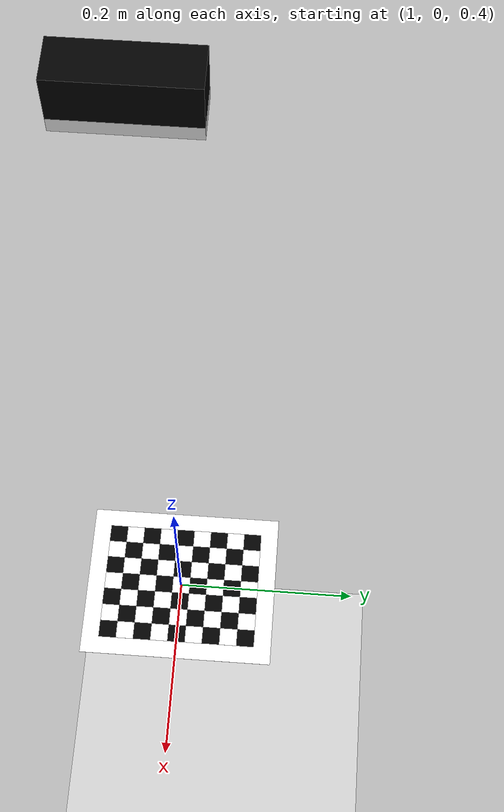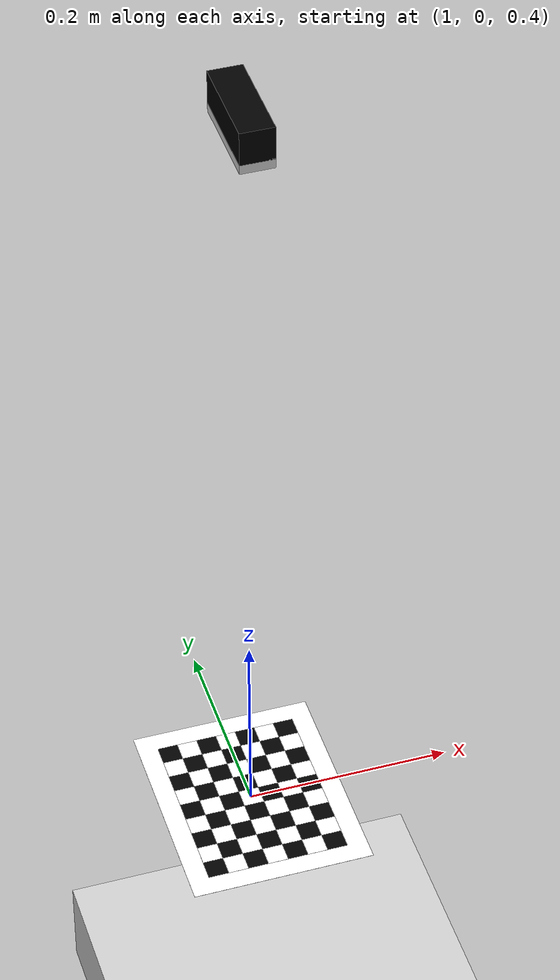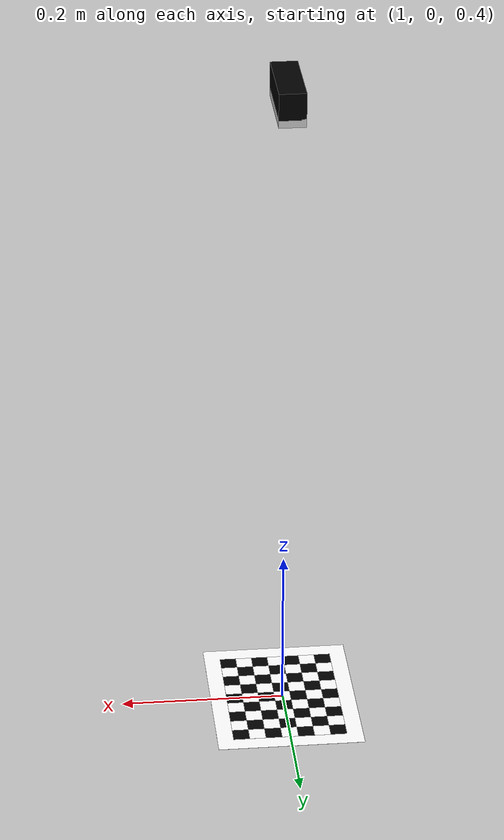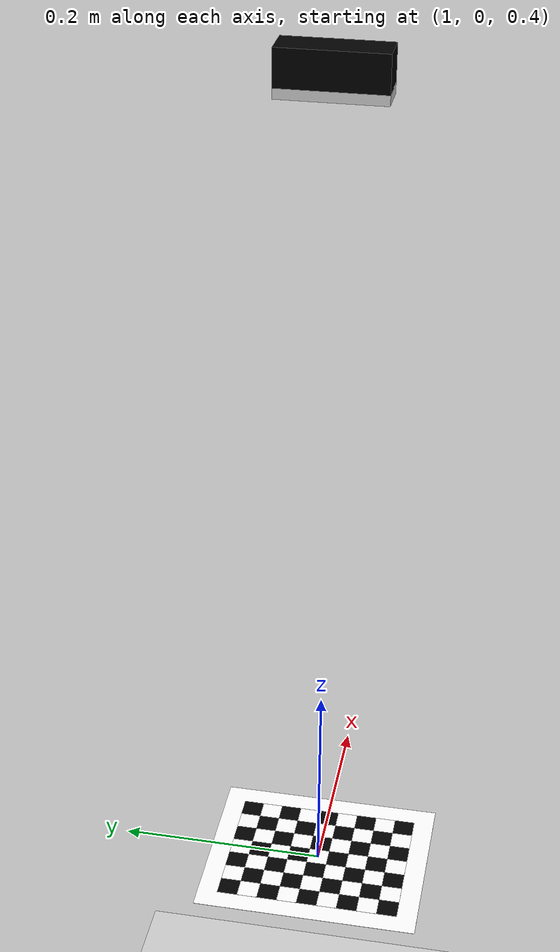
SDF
<?xml version="1.0" ?>
<sdf version="1.6">
  <world name="visual_servoing">
    <physics name="1ms" type="ignored">
      <max_step_size>0.001</max_step_size>
      <real_time_factor>1.0</real_time_factor>
    </physics>
    <plugin
      filename="ignition-gazebo-physics-system"
      name="gz::sim::systems::Physics">
    </plugin>
    <plugin
      filename="ignition-gazebo-sensors-system"
      name="gz::sim::systems::Sensors">
      <render_engine>ogre2</render_engine>
    </plugin>
    <plugin
      filename="ignition-gazebo-user-commands-system"
      name="ignition::gazebo::systems::UserCommands">
    </plugin>
    <plugin
      filename="ignition-gazebo-scene-broadcaster-system"
      name="gz::sim::systems::SceneBroadcaster">
    </plugin>

    <gui fullscreen="0">

      <!-- 3D scene -->
      <plugin filename="MinimalScene" name="3D View">
        <ignition-gui>
          <title>3D View</title>
          <property type="bool" key="showTitleBar">false</property>
          <property type="string" key="state">docked</property>
        </ignition-gui>

        <engine>ogre2</engine>
        <scene>scene</scene>
        <ambient_light>0.4 0.4 0.4</ambient_light>
        <background_color>0.8 0.8 0.8</background_color>
        <camera_pose>-6 0 6 0 0.5 0</camera_pose>
      </plugin>

      <!-- Plugins that add functionality to the scene -->
      <plugin filename="EntityContextMenuPlugin" name="Entity context menu">
        <ignition-gui>
          <property key="state" type="string">floating</property>
          <property key="width" type="double">5</property>
          <property key="height" type="double">5</property>
          <property key="showTitleBar" type="bool">false</property>
        </ignition-gui>
      </plugin>
      <plugin filename="GzSceneManager" name="Scene Manager">
        <ignition-gui>
          <property key="resizable" type="bool">false</property>
          <property key="width" type="double">5</property>
          <property key="height" type="double">5</property>
          <property key="state" type="string">floating</property>
          <property key="showTitleBar" type="bool">false</property>
        </ignition-gui>
      </plugin>
      <plugin filename="InteractiveViewControl" name="Interactive view control">
        <ignition-gui>
          <property key="resizable" type="bool">false</property>
          <property key="width" type="double">5</property>
          <property key="height" type="double">5</property>
          <property key="state" type="string">floating</property>
          <property key="showTitleBar" type="bool">false</property>
        </ignition-gui>
      </plugin>
      <plugin filename="CameraTracking" name="Camera Tracking">
        <ignition-gui>
          <property key="resizable" type="bool">false</property>
          <property key="width" type="double">5</property>
          <property key="height" type="double">5</property>
          <property key="state" type="string">floating</property>
          <property key="showTitleBar" type="bool">false</property>
        </ignition-gui>
      </plugin>
      <!-- World control -->
      <plugin filename="WorldControl" name="World control">
        <ignition-gui>
          <title>World control</title>
          <property type="bool" key="showTitleBar">false</property>
          <property type="bool" key="resizable">false</property>
          <property type="double" key="height">72</property>
          <property type="double" key="width">121</property>
          <property type="double" key="z">1</property>

          <property type="string" key="state">floating</property>
          <anchors target="3D View">
            <line own="left" target="left"/>
            <line own="bottom" target="bottom"/>
          </anchors>
        </ignition-gui>

        <play_pause>true</play_pause>
        <step>true</step>
        <start_paused>true</start_paused>
        <use_event>true</use_event>

      </plugin>

      <!-- World statistics -->
      <plugin filename="WorldStats" name="World stats">
        <ignition-gui>
          <title>World stats</title>
          <property type="bool" key="showTitleBar">false</property>
          <property type="bool" key="resizable">false</property>
          <property type="double" key="height">110</property>
          <property type="double" key="width">290</property>
          <property type="double" key="z">1</property>

          <property type="string" key="state">floating</property>
          <anchors target="3D View">
            <line own="right" target="right"/>
            <line own="bottom" target="bottom"/>
          </anchors>
        </ignition-gui>

        <sim_time>true</sim_time>
        <real_time>true</real_time>
        <real_time_factor>true</real_time_factor>
        <iterations>true</iterations>
      </plugin>

      <!-- Inspector -->
      <plugin filename="ComponentInspector" name="Component inspector">
        <ignition-gui>
          <property type="string" key="state">docked</property>
        </ignition-gui>
      </plugin>

      <!-- Entity tree -->
      <plugin filename="EntityTree" name="Entity tree">
        <ignition-gui>
          <property type="string" key="state">docked</property>
        </ignition-gui>
      </plugin>

      <plugin filename="ImageDisplay" name="Image Display 3">
        <ignition-gui>
          <title>RGBD: image</title>
          <property key="state" type="string">floating</property>
          <property type="double" key="width">350</property>
          <property type="double" key="height">315</property>
          <property type="double" key="y">320</property>

        </ignition-gui>
        <topic>rgbd_camera/image</topic>
        <topic_picker>false</topic_picker>
      </plugin>

      <plugin filename="ImageDisplay" name="Image Display 3">
        <ignition-gui>
          <title>RGBD: depth</title>
          <property key="state" type="string">docked</property>
        </ignition-gui>
        <topic>rgbd_camera/depth_image</topic>
        <topic_picker>false</topic_picker>
      </plugin>

      <plugin filename="MarkerManager" name="Marker manager">
        <ignition-gui>
          <property key="resizable" type="bool">false</property>
          <property key="width" type="double">5</property>
          <property key="height" type="double">5</property>
          <property key="state" type="string">floating</property>
          <property key="showTitleBar" type="bool">false</property>
        </ignition-gui>
      </plugin>

      <plugin filename="SelectEntities" name="Select Entities">
        <ignition-gui>
          <anchors target="Select entities">
            <line own="right" target="right"/>
            <line own="top" target="top"/>
          </anchors>
          <property key="resizable" type="bool">false</property>
          <property key="width" type="double">5</property>
          <property key="height" type="double">5</property>
          <property key="state" type="string">floating</property>
          <property key="showTitleBar" type="bool">false</property>
        </ignition-gui>
      </plugin>

      <plugin filename="VisualizationCapabilities" name="Visualization Capabilities">
        <ignition-gui>
          <property key="resizable" type="bool">false</property>
          <property key="width" type="double">5</property>
          <property key="height" type="double">5</property>
          <property key="state" type="string">floating</property>
          <property key="showTitleBar" type="bool">false</property>
        </ignition-gui>
      </plugin>

      <plugin filename="Spawn" name="Spawn Entities">
        <ignition-gui>
          <anchors target="Select entities">
            <line own="right" target="right"/>
            <line own="top" target="top"/>
          </anchors>
          <property key="resizable" type="bool">false</property>
          <property key="width" type="double">5</property>
          <property key="height" type="double">5</property>
          <property key="state" type="string">floating</property>
          <property key="showTitleBar" type="bool">false</property>
        </ignition-gui>
      </plugin>

      <!-- Insert simple shapes -->
      <plugin filename="Shapes" name="Shapes">
        <ignition-gui>
          <property key="resizable" type="bool">false</property>
          <property key="x" type="double">0</property>
          <property key="y" type="double">0</property>
          <property key="width" type="double">250</property>
          <property key="height" type="double">50</property>
          <property key="state" type="string">floating</property>
          <property key="showTitleBar" type="bool">false</property>
          <property key="cardBackground" type="string">#666666</property>
        </ignition-gui>
      </plugin>

      <!-- Insert lights -->
      <plugin filename="Lights" name="Lights">
        <ignition-gui>
          <property key="resizable" type="bool">false</property>
          <property key="x" type="double">250</property>
          <property key="y" type="double">0</property>
          <property key="width" type="double">150</property>
          <property key="height" type="double">50</property>
          <property key="state" type="string">floating</property>
          <property key="showTitleBar" type="bool">false</property>
          <property key="cardBackground" type="string">#666666</property>
        </ignition-gui>
      </plugin>

      <!-- Translate / rotate -->
      <plugin filename="TransformControl" name="Transform control">
        <ignition-gui>
          <property key="resizable" type="bool">false</property>
          <property key="x" type="double">0</property>
          <property key="y" type="double">50</property>
          <property key="width" type="double">250</property>
          <property key="height" type="double">50</property>
          <property key="state" type="string">floating</property>
          <property key="showTitleBar" type="bool">false</property>
          <property key="cardBackground" type="string">#777777</property>
        </ignition-gui>

        <!-- disable legacy features used to connect this plugin to GzScene3D -->
        <legacy>false</legacy>
      </plugin>

      <!-- Screenshot -->
      <plugin filename="Screenshot" name="Screenshot">
        <ignition-gui>
          <property key="resizable" type="bool">false</property>
          <property key="x" type="double">250</property>
          <property key="y" type="double">50</property>
          <property key="width" type="double">50</property>
          <property key="height" type="double">50</property>
          <property key="state" type="string">floating</property>
          <property key="showTitleBar" type="bool">false</property>
          <property key="cardBackground" type="string">#777777</property>
        </ignition-gui>
      </plugin>

      <!-- Video recorder -->
      <plugin filename="VideoRecorder" name="VideoRecorder">
        <ignition-gui>
          <property key="resizable" type="bool">false</property>
          <property key="x" type="double">300</property>
          <property key="y" type="double">50</property>
          <property key="width" type="double">50</property>
          <property key="height" type="double">50</property>
          <property key="state" type="string">floating</property>
          <property key="showTitleBar" type="bool">false</property>
          <property key="cardBackground" type="string">#777777</property>
        </ignition-gui>

        <record_video>
          <use_sim_time>true</use_sim_time>
          <lockstep>true</lockstep>
          <bitrate>4000000</bitrate>
        </record_video>

        <!-- disable legacy features used to connect this plugin to GzScene3D -->
        <legacy>false</legacy>
      </plugin>

      <!-- View angle -->
      <plugin filename="ViewAngle" name="View angle">
        <ignition-gui>
          <property type="string" key="state">docked_collapsed</property>
        </ignition-gui>

        <!-- disable legacy features used to connect this plugin to GzScene3D -->
        <legacy>false</legacy>
      </plugin>

    </gui>

    <light type="directional" name="sun">
      <cast_shadows>true</cast_shadows>
      <pose>0 0 10 0 0 0</pose>
      <diffuse>0.8 0.8 0.8 1</diffuse>
      <specular>0.2 0.2 0.2 1</specular>
      <attenuation>
        <range>1000</range>
        <constant>0.9</constant>
        <linear>0.01</linear>
        <quadratic>0.001</quadratic>
      </attenuation>
      <direction>-0.5 0.1 -0.9</direction>
    </light>

    <model name="ground_plane">
      <static>true</static>
      <link name="link">
        <collision name="collision">
          <geometry>
            <box>
              <size>20 20 0.1</size>
            </box>
          </geometry>
        </collision>
        <visual name="visual">
          <geometry>
            <box>
              <size>20 20 0.1</size>
            </box>
          </geometry>
          <material>
            <ambient>0.8 0.8 0.8 1</ambient>
            <diffuse>0.8 0.8 0.8 1</diffuse>
            <specular>0.8 0.8 0.8 1</specular>
          </material>

        </visual>
      </link>
    </model>

    <model name="rgbd_camera">
      <joint name="joint_world" type="fixed">
        <parent>world</parent>
        <child>rgbd_camera_lens</child>
      </joint>

      <link name="rgbd_camera_lens">

        <pose>1.0 0 1.2 0 1.5708 0</pose>

        <inertial>
          <mass>0.05</mass>
          <inertia>
          </inertia>
        </inertial>

        <collision name="collision">
          <geometry>
            <box>
              <size>0.01 0.0936 0.0318</size>
            </box>
          </geometry>
        </collision>

        <visual name="visual">
          <geometry>
            <box>
              <size>0.01 0.0936 0.0318</size>
            </box>
          </geometry>

          <material>
            <ambient>0.85 0.85 0.85 1</ambient>
            <diffuse>0.85 0.85 0.85 1</diffuse>
            <specular>0.95 0.95 0.95 1</specular>
          </material>
        </visual>

        <sensor name="rgbd_camera" type="rgbd_camera">
          <camera>

            <horizontal_fov>1.9199</horizontal_fov>
            <image>
              <width>960</width>
              <height>600</height>
              <format>R8G8B8</format>
            </image>
            <clip>
              <near>0.01</near>
              <far>15</far>
            </clip>

            <depth_camera>
              <clip>
                <near>0.1</near>
                <far>8</far>
              </clip>
            </depth_camera>

          </camera>
          <always_on>1</always_on>
          <update_rate>60</update_rate>
          <visualize>true</visualize>
          <topic>rgbd_camera</topic>
          <enable_metrics>true</enable_metrics>
        </sensor>
      </link>

      <joint name="joint_camera" type="fixed">
        <parent>world</parent>
        <child>rgbd_camera_body</child>
      </joint>

      <link name="rgbd_camera_body">
        <pose>1.0 0 1.22 0 1.5708 0</pose>
        <inertial>
          <mass>0.101</mass>
        </inertial>
        <collision name="collision">
          <geometry>
            <box>
              <size>0.0324 0.0936 0.0318</size>
            </box>
          </geometry>
        </collision>

        <visual name="visual">
          <geometry>
            <box>
              <size>0.0324 0.0936 0.0318</size>
            </box>
          </geometry>
          <material>
            <ambient>0.0 0.0 0.0 1</ambient>
            <diffuse>0.0 0.0 0.0 1</diffuse>
            <specular>0.1 0.1 0.1 1</specular>
          </material>

        </visual>
      </link>
    </model>

    <!--checker board-->
    <joint name="joint_checker_board" type="screw">
        <parent>world</parent>
        <child>checker_board</child>
    </joint>

    <include>
        <pose>1.0 0.0 0.4 0 0 0</pose>
        <name>checker_board</name>
        <uri>model://description/checker_board.sdf</uri>
    </include>

  </world>
</sdf>

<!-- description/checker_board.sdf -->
<sdf version="1.4">
  <model name="checkerboard">
  <static>true</static>
  <link name="checkerboard_body">
      <visual name="checker_0_0">
        <pose>-0.060000000000000005 -0.08 0 0 0 0</pose>
        <geometry>
          <box>
            <size>0.02 0.02 0.0002</size>
          </box>
        </geometry>
        <material>
          <ambient>0 0 0 1</ambient>
          <diffuse>0 0 0 1</diffuse>
          <specular>0 0 0 1</specular>
          <emissive>0 0 0 1</emissive>
        </material>
      </visual>
      <visual name="checker_0_1">
        <pose>-0.060000000000000005 -0.06 0 0 0 0</pose>
        <geometry>
          <box>
            <size>0.02 0.02 0.0002</size>
          </box>
        </geometry>
        <material>
          <ambient>1 1 1 1</ambient>
          <diffuse>1 1 1 1</diffuse>
          <specular>1 1 1 1</specular>
          <emissive>1 1 1 1</emissive>
        </material>
      </visual>
      <visual name="checker_0_2">
        <pose>-0.060000000000000005 -0.039999999999999994 0 0 0 0</pose>
        <geometry>
          <box>
            <size>0.02 0.02 0.0002</size>
          </box>
        </geometry>
        <material>
          <ambient>0 0 0 1</ambient>
          <diffuse>0 0 0 1</diffuse>
          <specular>0 0 0 1</specular>
          <emissive>0 0 0 1</emissive>
        </material>
      </visual>
      <visual name="checker_0_3">
        <pose>-0.060000000000000005 -0.020000000000000004 0 0 0 0</pose>
        <geometry>
          <box>
            <size>0.02 0.02 0.0002</size>
          </box>
        </geometry>
        <material>
          <ambient>1 1 1 1</ambient>
          <diffuse>1 1 1 1</diffuse>
          <specular>1 1 1 1</specular>
          <emissive>1 1 1 1</emissive>
        </material>
      </visual>
      <visual name="checker_0_4">
        <pose>-0.060000000000000005 0.0 0 0 0 0</pose>
        <geometry>
          <box>
            <size>0.02 0.02 0.0002</size>
          </box>
        </geometry>
        <material>
          <ambient>0 0 0 1</ambient>
          <diffuse>0 0 0 1</diffuse>
          <specular>0 0 0 1</specular>
          <emissive>0 0 0 1</emissive>
        </material>
      </visual>
      <visual name="checker_0_5">
        <pose>-0.060000000000000005 0.020000000000000004 0 0 0 0</pose>
        <geometry>
          <box>
            <size>0.02 0.02 0.0002</size>
          </box>
        </geometry>
        <material>
          <ambient>1 1 1 1</ambient>
          <diffuse>1 1 1 1</diffuse>
          <specular>1 1 1 1</specular>
          <emissive>1 1 1 1</emissive>
        </material>
      </visual>
      <visual name="checker_0_6">
        <pose>-0.060000000000000005 0.04000000000000001 0 0 0 0</pose>
        <geometry>
          <box>
            <size>0.02 0.02 0.0002</size>
          </box>
        </geometry>
        <material>
          <ambient>0 0 0 1</ambient>
          <diffuse>0 0 0 1</diffuse>
          <specular>0 0 0 1</specular>
          <emissive>0 0 0 1</emissive>
        </material>
      </visual>
      <visual name="checker_0_7">
        <pose>-0.060000000000000005 0.060000000000000026 0 0 0 0</pose>
        <geometry>
          <box>
            <size>0.02 0.02 0.0002</size>
          </box>
        </geometry>
        <material>
          <ambient>1 1 1 1</ambient>
          <diffuse>1 1 1 1</diffuse>
          <specular>1 1 1 1</specular>
          <emissive>1 1 1 1</emissive>
        </material>
      </visual>
      <visual name="checker_0_8">
        <pose>-0.060000000000000005 0.08000000000000002 0 0 0 0</pose>
        <geometry>
          <box>
            <size>0.02 0.02 0.0002</size>
          </box>
        </geometry>
        <material>
          <ambient>0 0 0 1</ambient>
          <diffuse>0 0 0 1</diffuse>
          <specular>0 0 0 1</specular>
          <emissive>0 0 0 1</emissive>
        </material>
      </visual>
      <visual name="checker_1_0">
        <pose>-0.04000000000000001 -0.08 0 0 0 0</pose>
        <geometry>
          <box>
            <size>0.02 0.02 0.0002</size>
          </box>
        </geometry>
        <material>
          <ambient>1 1 1 1</ambient>
          <diffuse>1 1 1 1</diffuse>
          <specular>1 1 1 1</specular>
          <emissive>1 1 1 1</emissive>
        </material>
      </visual>
      <visual name="checker_1_1">
        <pose>-0.04000000000000001 -0.06 0 0 0 0</pose>
        <geometry>
          <box>
            <size>0.02 0.02 0.0002</size>
          </box>
        </geometry>
        <material>
          <ambient>0 0 0 1</ambient>
          <diffuse>0 0 0 1</diffuse>
          <specular>0 0 0 1</specular>
          <emissive>0 0 0 1</emissive>
        </material>
      </visual>
      <visual name="checker_1_2">
        <pose>-0.04000000000000001 -0.039999999999999994 0 0 0 0</pose>
        <geometry>
          <box>
            <size>0.02 0.02 0.0002</size>
          </box>
        </geometry>
        <material>
          <ambient>1 1 1 1</ambient>
          <diffuse>1 1 1 1</diffuse>
          <specular>1 1 1 1</specular>
          <emissive>1 1 1 1</emissive>
        </material>
      </visual>
      <visual name="checker_1_3">
        <pose>-0.04000000000000001 -0.020000000000000004 0 0 0 0</pose>
        <geometry>
          <box>
            <size>0.02 0.02 0.0002</size>
          </box>
        </geometry>
        <material>
          <ambient>0 0 0 1</ambient>
          <diffuse>0 0 0 1</diffuse>
          <specular>0 0 0 1</specular>
          <emissive>0 0 0 1</emissive>
        </material>
      </visual>
      <visual name="checker_1_4">
        <pose>-0.04000000000000001 0.0 0 0 0 0</pose>
        <geometry>
          <box>
            <size>0.02 0.02 0.0002</size>
          </box>
        </geometry>
        <material>
          <ambient>1 1 1 1</ambient>
          <diffuse>1 1 1 1</diffuse>
          <specular>1 1 1 1</specular>
          <emissive>1 1 1 1</emissive>
        </material>
      </visual>
      <visual name="checker_1_5">
        <pose>-0.04000000000000001 0.020000000000000004 0 0 0 0</pose>
        <geometry>
          <box>
            <size>0.02 0.02 0.0002</size>
          </box>
        </geometry>
        <material>
          <ambient>0 0 0 1</ambient>
          <diffuse>0 0 0 1</diffuse>
          <specular>0 0 0 1</specular>
          <emissive>0 0 0 1</emissive>
        </material>
      </visual>
      <visual name="checker_1_6">
        <pose>-0.04000000000000001 0.04000000000000001 0 0 0 0</pose>
        <geometry>
          <box>
            <size>0.02 0.02 0.0002</size>
          </box>
        </geometry>
        <material>
          <ambient>1 1 1 1</ambient>
          <diffuse>1 1 1 1</diffuse>
          <specular>1 1 1 1</specular>
          <emissive>1 1 1 1</emissive>
        </material>
      </visual>
      <visual name="checker_1_7">
        <pose>-0.04000000000000001 0.060000000000000026 0 0 0 0</pose>
        <geometry>
          <box>
            <size>0.02 0.02 0.0002</size>
          </box>
        </geometry>
        <material>
          <ambient>0 0 0 1</ambient>
          <diffuse>0 0 0 1</diffuse>
          <specular>0 0 0 1</specular>
          <emissive>0 0 0 1</emissive>
        </material>
      </visual>
      <visual name="checker_1_8">
        <pose>-0.04000000000000001 0.08000000000000002 0 0 0 0</pose>
        <geometry>
          <box>
            <size>0.02 0.02 0.0002</size>
          </box>
        </geometry>
        <material>
          <ambient>1 1 1 1</ambient>
          <diffuse>1 1 1 1</diffuse>
          <specular>1 1 1 1</specular>
          <emissive>1 1 1 1</emissive>
        </material>
      </visual>
      <visual name="checker_2_0">
        <pose>-0.020000000000000004 -0.08 0 0 0 0</pose>
        <geometry>
          <box>
            <size>0.02 0.02 0.0002</size>
          </box>
        </geometry>
        <material>
          <ambient>0 0 0 1</ambient>
          <diffuse>0 0 0 1</diffuse>
          <specular>0 0 0 1</specular>
          <emissive>0 0 0 1</emissive>
        </material>
      </visual>
      <visual name="checker_2_1">
        <pose>-0.020000000000000004 -0.06 0 0 0 0</pose>
        <geometry>
          <box>
            <size>0.02 0.02 0.0002</size>
          </box>
        </geometry>
        <material>
          <ambient>1 1 1 1</ambient>
          <diffuse>1 1 1 1</diffuse>
          <specular>1 1 1 1</specular>
          <emissive>1 1 1 1</emissive>
        </material>
      </visual>
      <visual name="checker_2_2">
        <pose>-0.020000000000000004 -0.039999999999999994 0 0 0 0</pose>
        <geometry>
          <box>
            <size>0.02 0.02 0.0002</size>
          </box>
        </geometry>
        <material>
          <ambient>0 0 0 1</ambient>
          <diffuse>0 0 0 1</diffuse>
          <specular>0 0 0 1</specular>
          <emissive>0 0 0 1</emissive>
        </material>
      </visual>
      <visual name="checker_2_3">
        <pose>-0.020000000000000004 -0.020000000000000004 0 0 0 0</pose>
        <geometry>
          <box>
            <size>0.02 0.02 0.0002</size>
          </box>
        </geometry>
        <material>
          <ambient>1 1 1 1</ambient>
          <diffuse>1 1 1 1</diffuse>
          <specular>1 1 1 1</specular>
          <emissive>1 1 1 1</emissive>
        </material>
      </visual>
      <visual name="checker_2_4">
        <pose>-0.020000000000000004 0.0 0 0 0 0</pose>
        <geometry>
          <box>
            <size>0.02 0.02 0.0002</size>
          </box>
        </geometry>
        <material>
          <ambient>0 0 0 1</ambient>
          <diffuse>0 0 0 1</diffuse>
          <specular>0 0 0 1</specular>
          <emissive>0 0 0 1</emissive>
        </material>
      </visual>
      <visual name="checker_2_5">
        <pose>-0.020000000000000004 0.020000000000000004 0 0 0 0</pose>
        <geometry>
          <box>
            <size>0.02 0.02 0.0002</size>
          </box>
        </geometry>
        <material>
          <ambient>1 1 1 1</ambient>
          <diffuse>1 1 1 1</diffuse>
          <specular>1 1 1 1</specular>
          <emissive>1 1 1 1</emissive>
        </material>
      </visual>
      <visual name="checker_2_6">
        <pose>-0.020000000000000004 0.04000000000000001 0 0 0 0</pose>
        <geometry>
          <box>
            <size>0.02 0.02 0.0002</size>
          </box>
        </geometry>
        <material>
          <ambient>0 0 0 1</ambient>
          <diffuse>0 0 0 1</diffuse>
          <specular>0 0 0 1</specular>
          <emissive>0 0 0 1</emissive>
        </material>
      </visual>
      <visual name="checker_2_7">
        <pose>-0.020000000000000004 0.060000000000000026 0 0 0 0</pose>
        <geometry>
          <box>
            <size>0.02 0.02 0.0002</size>
          </box>
        </geometry>
        <material>
          <ambient>1 1 1 1</ambient>
          <diffuse>1 1 1 1</diffuse>
          <specular>1 1 1 1</specular>
          <emissive>1 1 1 1</emissive>
        </material>
      </visual>
      <visual name="checker_2_8">
        <pose>-0.020000000000000004 0.08000000000000002 0 0 0 0</pose>
        <geometry>
          <box>
            <size>0.02 0.02 0.0002</size>
          </box>
        </geometry>
        <material>
          <ambient>0 0 0 1</ambient>
          <diffuse>0 0 0 1</diffuse>
          <specular>0 0 0 1</specular>
          <emissive>0 0 0 1</emissive>
        </material>
      </visual>
      <visual name="checker_3_0">
        <pose>-1.3877787807814457e-17 -0.08 0 0 0 0</pose>
        <geometry>
          <box>
            <size>0.02 0.02 0.0002</size>
          </box>
        </geometry>
        <material>
          <ambient>1 1 1 1</ambient>
          <diffuse>1 1 1 1</diffuse>
          <specular>1 1 1 1</specular>
          <emissive>1 1 1 1</emissive>
        </material>
      </visual>
      <visual name="checker_3_1">
        <pose>-1.3877787807814457e-17 -0.06 0 0 0 0</pose>
        <geometry>
          <box>
            <size>0.02 0.02 0.0002</size>
          </box>
        </geometry>
        <material>
          <ambient>0 0 0 1</ambient>
          <diffuse>0 0 0 1</diffuse>
          <specular>0 0 0 1</specular>
          <emissive>0 0 0 1</emissive>
        </material>
      </visual>
      <visual name="checker_3_2">
        <pose>-1.3877787807814457e-17 -0.039999999999999994 0 0 0 0</pose>
        <geometry>
          <box>
            <size>0.02 0.02 0.0002</size>
          </box>
        </geometry>
        <material>
          <ambient>1 1 1 1</ambient>
          <diffuse>1 1 1 1</diffuse>
          <specular>1 1 1 1</specular>
          <emissive>1 1 1 1</emissive>
        </material>
      </visual>
      <visual name="checker_3_3">
        <pose>-1.3877787807814457e-17 -0.020000000000000004 0 0 0 0</pose>
        <geometry>
          <box>
            <size>0.02 0.02 0.0002</size>
          </box>
        </geometry>
        <material>
          <ambient>0 0 0 1</ambient>
          <diffuse>0 0 0 1</diffuse>
          <specular>0 0 0 1</specular>
          <emissive>0 0 0 1</emissive>
        </material>
      </visual>
      <visual name="checker_3_4">
        <pose>-1.3877787807814457e-17 0.0 0 0 0 0</pose>
        <geometry>
          <box>
            <size>0.02 0.02 0.0002</size>
          </box>
        </geometry>
        <material>
          <ambient>1 1 1 1</ambient>
          <diffuse>1 1 1 1</diffuse>
          <specular>1 1 1 1</specular>
          <emissive>1 1 1 1</emissive>
        </material>
      </visual>
      <visual name="checker_3_5">
        <pose>-1.3877787807814457e-17 0.020000000000000004 0 0 0 0</pose>
        <geometry>
          <box>
            <size>0.02 0.02 0.0002</size>
          </box>
        </geometry>
        <material>
          <ambient>0 0 0 1</ambient>
          <diffuse>0 0 0 1</diffuse>
          <specular>0 0 0 1</specular>
          <emissive>0 0 0 1</emissive>
        </material>
      </visual>
      <visual name="checker_3_6">
        <pose>-1.3877787807814457e-17 0.04000000000000001 0 0 0 0</pose>
        <geometry>
          <box>
            <size>0.02 0.02 0.0002</size>
          </box>
        </geometry>
        <material>
          <ambient>1 1 1 1</ambient>
          <diffuse>1 1 1 1</diffuse>
          <specular>1 1 1 1</specular>
          <emissive>1 1 1 1</emissive>
        </material>
      </visual>
      <visual name="checker_3_7">
        <pose>-1.3877787807814457e-17 0.060000000000000026 0 0 0 0</pose>
        <geometry>
          <box>
            <size>0.02 0.02 0.0002</size>
          </box>
        </geometry>
        <material>
          <ambient>0 0 0 1</ambient>
          <diffuse>0 0 0 1</diffuse>
          <specular>0 0 0 1</specular>
          <emissive>0 0 0 1</emissive>
        </material>
      </visual>
      <visual name="checker_3_8">
        <pose>-1.3877787807814457e-17 0.08000000000000002 0 0 0 0</pose>
        <geometry>
          <box>
            <size>0.02 0.02 0.0002</size>
          </box>
        </geometry>
        <material>
          <ambient>1 1 1 1</ambient>
          <diffuse>1 1 1 1</diffuse>
          <specular>1 1 1 1</specular>
          <emissive>1 1 1 1</emissive>
        </material>
      </visual>
      <visual name="checker_4_0">
        <pose>0.01999999999999999 -0.08 0 0 0 0</pose>
        <geometry>
          <box>
            <size>0.02 0.02 0.0002</size>
          </box>
        </geometry>
        <material>
          <ambient>0 0 0 1</ambient>
          <diffuse>0 0 0 1</diffuse>
          <specular>0 0 0 1</specular>
          <emissive>0 0 0 1</emissive>
        </material>
      </visual>
      <visual name="checker_4_1">
        <pose>0.01999999999999999 -0.06 0 0 0 0</pose>
        <geometry>
          <box>
            <size>0.02 0.02 0.0002</size>
          </box>
        </geometry>
        <material>
          <ambient>1 1 1 1</ambient>
          <diffuse>1 1 1 1</diffuse>
          <specular>1 1 1 1</specular>
          <emissive>1 1 1 1</emissive>
        </material>
      </visual>
      <visual name="checker_4_2">
        <pose>0.01999999999999999 -0.039999999999999994 0 0 0 0</pose>
        <geometry>
          <box>
            <size>0.02 0.02 0.0002</size>
          </box>
        </geometry>
        <material>
          <ambient>0 0 0 1</ambient>
          <diffuse>0 0 0 1</diffuse>
          <specular>0 0 0 1</specular>
          <emissive>0 0 0 1</emissive>
        </material>
      </visual>
      <visual name="checker_4_3">
        <pose>0.01999999999999999 -0.020000000000000004 0 0 0 0</pose>
        <geometry>
          <box>
            <size>0.02 0.02 0.0002</size>
          </box>
        </geometry>
        <material>
          <ambient>1 1 1 1</ambient>
          <diffuse>1 1 1 1</diffuse>
          <specular>1 1 1 1</specular>
          <emissive>1 1 1 1</emissive>
        </material>
      </visual>
      <visual name="checker_4_4">
        <pose>0.01999999999999999 0.0 0 0 0 0</pose>
        <geometry>
          <box>
            <size>0.02 0.02 0.0002</size>
          </box>
        </geometry>
        <material>
          <ambient>0 0 0 1</ambient>
          <diffuse>0 0 0 1</diffuse>
          <specular>0 0 0 1</specular>
          <emissive>0 0 0 1</emissive>
        </material>
      </visual>
      <visual name="checker_4_5">
        <pose>0.01999999999999999 0.020000000000000004 0 0 0 0</pose>
        <geometry>
          <box>
            <size>0.02 0.02 0.0002</size>
          </box>
        </geometry>
        <material>
          <ambient>1 1 1 1</ambient>
          <diffuse>1 1 1 1</diffuse>
          <specular>1 1 1 1</specular>
          <emissive>1 1 1 1</emissive>
        </material>
      </visual>
      <visual name="checker_4_6">
        <pose>0.01999999999999999 0.04000000000000001 0 0 0 0</pose>
        <geometry>
          <box>
            <size>0.02 0.02 0.0002</size>
          </box>
        </geometry>
        <material>
          <ambient>0 0 0 1</ambient>
          <diffuse>0 0 0 1</diffuse>
          <specular>0 0 0 1</specular>
          <emissive>0 0 0 1</emissive>
        </material>
      </visual>
      <visual name="checker_4_7">
        <pose>0.01999999999999999 0.060000000000000026 0 0 0 0</pose>
        <geometry>
          <box>
            <size>0.02 0.02 0.0002</size>
          </box>
        </geometry>
        <material>
          <ambient>1 1 1 1</ambient>
          <diffuse>1 1 1 1</diffuse>
          <specular>1 1 1 1</specular>
          <emissive>1 1 1 1</emissive>
        </material>
      </visual>
      <visual name="checker_4_8">
        <pose>0.01999999999999999 0.08000000000000002 0 0 0 0</pose>
        <geometry>
          <box>
            <size>0.02 0.02 0.0002</size>
          </box>
        </geometry>
        <material>
          <ambient>0 0 0 1</ambient>
          <diffuse>0 0 0 1</diffuse>
          <specular>0 0 0 1</specular>
          <emissive>0 0 0 1</emissive>
        </material>
      </visual>
      <visual name="checker_5_0">
        <pose>0.039999999999999994 -0.08 0 0 0 0</pose>
        <geometry>
          <box>
            <size>0.02 0.02 0.0002</size>
          </box>
        </geometry>
        <material>
          <ambient>1 1 1 1</ambient>
          <diffuse>1 1 1 1</diffuse>
          <specular>1 1 1 1</specular>
          <emissive>1 1 1 1</emissive>
        </material>
      </visual>
      <visual name="checker_5_1">
        <pose>0.039999999999999994 -0.06 0 0 0 0</pose>
        <geometry>
          <box>
            <size>0.02 0.02 0.0002</size>
          </box>
        </geometry>
        <material>
          <ambient>0 0 0 1</ambient>
          <diffuse>0 0 0 1</diffuse>
          <specular>0 0 0 1</specular>
          <emissive>0 0 0 1</emissive>
        </material>
      </visual>
      <visual name="checker_5_2">
        <pose>0.039999999999999994 -0.039999999999999994 0 0 0 0</pose>
        <geometry>
          <box>
            <size>0.02 0.02 0.0002</size>
          </box>
        </geometry>
        <material>
          <ambient>1 1 1 1</ambient>
          <diffuse>1 1 1 1</diffuse>
          <specular>1 1 1 1</specular>
          <emissive>1 1 1 1</emissive>
        </material>
      </visual>
      <visual name="checker_5_3">
        <pose>0.039999999999999994 -0.020000000000000004 0 0 0 0</pose>
        <geometry>
          <box>
            <size>0.02 0.02 0.0002</size>
          </box>
        </geometry>
        <material>
          <ambient>0 0 0 1</ambient>
          <diffuse>0 0 0 1</diffuse>
          <specular>0 0 0 1</specular>
          <emissive>0 0 0 1</emissive>
        </material>
      </visual>
      <visual name="checker_5_4">
        <pose>0.039999999999999994 0.0 0 0 0 0</pose>
        <geometry>
          <box>
            <size>0.02 0.02 0.0002</size>
          </box>
        </geometry>
        <material>
          <ambient>1 1 1 1</ambient>
          <diffuse>1 1 1 1</diffuse>
          <specular>1 1 1 1</specular>
          <emissive>1 1 1 1</emissive>
        </material>
      </visual>
      <visual name="checker_5_5">
        <pose>0.039999999999999994 0.020000000000000004 0 0 0 0</pose>
        <geometry>
          <box>
            <size>0.02 0.02 0.0002</size>
          </box>
        </geometry>
        <material>
          <ambient>0 0 0 1</ambient>
          <diffuse>0 0 0 1</diffuse>
          <specular>0 0 0 1</specular>
          <emissive>0 0 0 1</emissive>
        </material>
      </visual>
      <visual name="checker_5_6">
        <pose>0.039999999999999994 0.04000000000000001 0 0 0 0</pose>
        <geometry>
          <box>
            <size>0.02 0.02 0.0002</size>
          </box>
        </geometry>
        <material>
          <ambient>1 1 1 1</ambient>
          <diffuse>1 1 1 1</diffuse>
          <specular>1 1 1 1</specular>
          <emissive>1 1 1 1</emissive>
        </material>
      </visual>
      <visual name="checker_5_7">
        <pose>0.039999999999999994 0.060000000000000026 0 0 0 0</pose>
        <geometry>
          <box>
            <size>0.02 0.02 0.0002</size>
          </box>
        </geometry>
        <material>
          <ambient>0 0 0 1</ambient>
          <diffuse>0 0 0 1</diffuse>
          <specular>0 0 0 1</specular>
          <emissive>0 0 0 1</emissive>
        </material>
      </visual>
      <visual name="checker_5_8">
        <pose>0.039999999999999994 0.08000000000000002 0 0 0 0</pose>
        <geometry>
          <box>
            <size>0.02 0.02 0.0002</size>
          </box>
        </geometry>
        <material>
          <ambient>1 1 1 1</ambient>
          <diffuse>1 1 1 1</diffuse>
          <specular>1 1 1 1</specular>
          <emissive>1 1 1 1</emissive>
        </material>
      </visual>
      <visual name="checker_6_0">
        <pose>0.06 -0.08 0 0 0 0</pose>
        <geometry>
          <box>
            <size>0.02 0.02 0.0002</size>
          </box>
        </geometry>
        <material>
          <ambient>0 0 0 1</ambient>
          <diffuse>0 0 0 1</diffuse>
          <specular>0 0 0 1</specular>
          <emissive>0 0 0 1</emissive>
        </material>
      </visual>
      <visual name="checker_6_1">
        <pose>0.06 -0.06 0 0 0 0</pose>
        <geometry>
          <box>
            <size>0.02 0.02 0.0002</size>
          </box>
        </geometry>
        <material>
          <ambient>1 1 1 1</ambient>
          <diffuse>1 1 1 1</diffuse>
          <specular>1 1 1 1</specular>
          <emissive>1 1 1 1</emissive>
        </material>
      </visual>
      <visual name="checker_6_2">
        <pose>0.06 -0.039999999999999994 0 0 0 0</pose>
        <geometry>
          <box>
            <size>0.02 0.02 0.0002</size>
          </box>
        </geometry>
        <material>
          <ambient>0 0 0 1</ambient>
          <diffuse>0 0 0 1</diffuse>
          <specular>0 0 0 1</specular>
          <emissive>0 0 0 1</emissive>
        </material>
      </visual>
      <visual name="checker_6_3">
        <pose>0.06 -0.020000000000000004 0 0 0 0</pose>
        <geometry>
          <box>
            <size>0.02 0.02 0.0002</size>
          </box>
        </geometry>
        <material>
          <ambient>1 1 1 1</ambient>
          <diffuse>1 1 1 1</diffuse>
          <specular>1 1 1 1</specular>
          <emissive>1 1 1 1</emissive>
        </material>
      </visual>
      <visual name="checker_6_4">
        <pose>0.06 0.0 0 0 0 0</pose>
        <geometry>
          <box>
            <size>0.02 0.02 0.0002</size>
          </box>
        </geometry>
        <material>
          <ambient>0 0 0 1</ambient>
          <diffuse>0 0 0 1</diffuse>
          <specular>0 0 0 1</specular>
          <emissive>0 0 0 1</emissive>
        </material>
      </visual>
      <visual name="checker_6_5">
        <pose>0.06 0.020000000000000004 0 0 0 0</pose>
        <geometry>
          <box>
            <size>0.02 0.02 0.0002</size>
          </box>
        </geometry>
        <material>
          <ambient>1 1 1 1</ambient>
          <diffuse>1 1 1 1</diffuse>
          <specular>1 1 1 1</specular>
          <emissive>1 1 1 1</emissive>
        </material>
      </visual>
      <visual name="checker_6_6">
        <pose>0.06 0.04000000000000001 0 0 0 0</pose>
        <geometry>
          <box>
            <size>0.02 0.02 0.0002</size>
          </box>
        </geometry>
        <material>
          <ambient>0 0 0 1</ambient>
          <diffuse>0 0 0 1</diffuse>
          <specular>0 0 0 1</specular>
          <emissive>0 0 0 1</emissive>
        </material>
      </visual>
      <visual name="checker_6_7">
        <pose>0.06 0.060000000000000026 0 0 0 0</pose>
        <geometry>
          <box>
            <size>0.02 0.02 0.0002</size>
          </box>
        </geometry>
        <material>
          <ambient>1 1 1 1</ambient>
          <diffuse>1 1 1 1</diffuse>
          <specular>1 1 1 1</specular>
          <emissive>1 1 1 1</emissive>
        </material>
      </visual>
      <visual name="checker_6_8">
        <pose>0.06 0.08000000000000002 0 0 0 0</pose>
        <geometry>
          <box>
            <size>0.02 0.02 0.0002</size>
          </box>
        </geometry>
        <material>
          <ambient>0 0 0 1</ambient>
          <diffuse>0 0 0 1</diffuse>
          <specular>0 0 0 1</specular>
          <emissive>0 0 0 1</emissive>
        </material>
      </visual>
      <visual name="checker_backdrop">
        <pose>0 0 0 0 0 0</pose>
        <geometry>
          <box>
            <size>0.18 0.22 0.0001</size>
          </box>
        </geometry>
        <material>
          <ambient>1 1 1 1</ambient>
          <diffuse>1 1 1 1</diffuse>
          <specular>1 1 1 1</specular>
          <emissive>1 1 1 1</emissive>
        </material>
      </visual>
    </link>
  </model>
</sdf>
